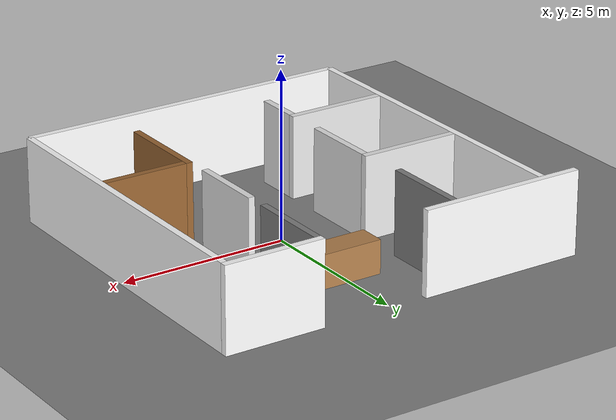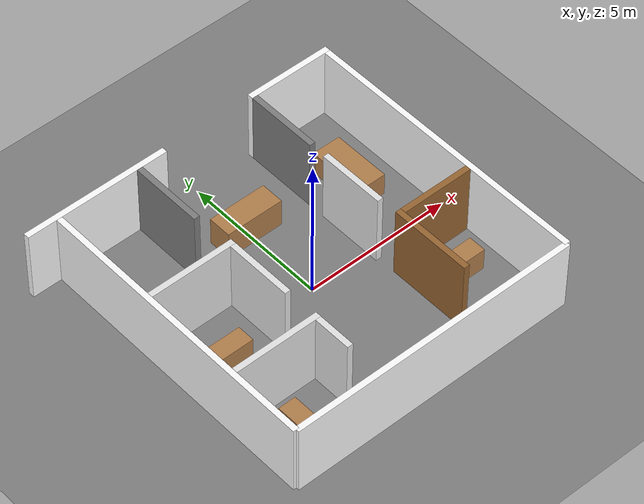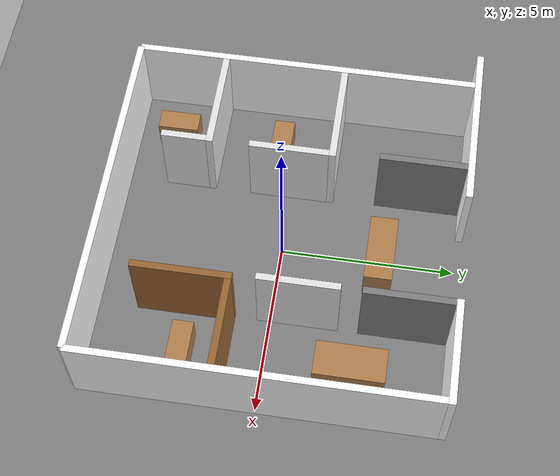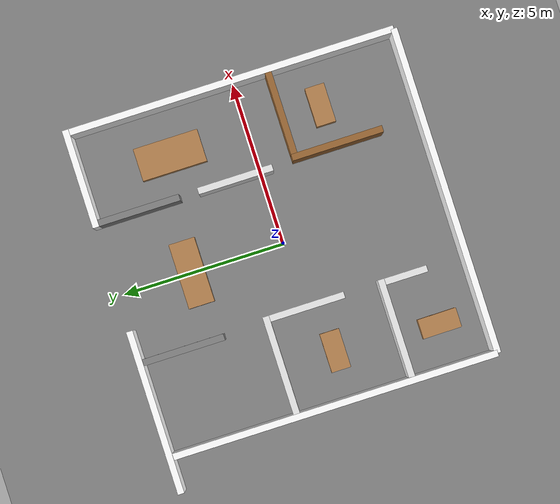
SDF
<sdf version='1.9'>
  <world name='default'>

    <!-- ==================== GZ-SIM SYSTEM PLUGINS ==================== -->
    <plugin filename="gz-sim-physics-system" name="gz::sim::systems::Physics"/>
    <plugin filename="gz-sim-scene-broadcaster-system" name="gz::sim::systems::SceneBroadcaster"/>
    <plugin filename="gz-sim-user-commands-system" name="gz::sim::systems::UserCommands"/>
    <plugin filename="gz-sim-sensors-system" name="gz::sim::systems::Sensors">
      <render_engine>ogre2</render_engine>
    </plugin>
    <plugin filename="gz-sim-contact-system" name="gz::sim::systems::Contact"/>

    <!-- ==================== PHYSICS ==================== -->
    <physics name="1ms" type="ignored">
      <max_step_size>0.001</max_step_size>
      <real_time_factor>1</real_time_factor>
    </physics>

    <!-- ==================== SCENE ==================== -->
    <scene>
      <ambient>0.4 0.4 0.4 1</ambient>
      <background>0.7 0.7 0.7 1</background>
      <shadows>true</shadows>
    </scene>

    <!-- ==================== LIGHT ==================== -->
    <light name='sun' type='directional'>
      <cast_shadows>true</cast_shadows>
      <pose>0 0 10 0 0 0</pose>
      <diffuse>0.8 0.8 0.8 1</diffuse>
      <specular>0.2 0.2 0.2 1</specular>
      <attenuation>
        <range>1000</range>
        <constant>0.9</constant>
        <linear>0.01</linear>
        <quadratic>0.001</quadratic>
      </attenuation>
      <direction>-0.5 0.1 -0.9</direction>
    </light>

    <gravity>0 0 -9.8</gravity>
    <magnetic_field>6e-06 2.3e-05 -4.2e-05</magnetic_field>
    <atmosphere type='adiabatic'/>

    <!-- ==================== GROUND PLANE ==================== -->
    <model name='ground_plane'>
      <static>true</static>
      <link name='link'>
        <collision name='collision'>
          <geometry>
            <plane>
              <normal>0 0 1</normal>
              <size>100 100</size>
            </plane>
          </geometry>
        </collision>
        <visual name='visual'>
          <cast_shadows>false</cast_shadows>
          <geometry>
            <plane>
              <normal>0 0 1</normal>
              <size>100 100</size>
            </plane>
          </geometry>
          <material>
            <ambient>0.5 0.5 0.5 1</ambient>
            <diffuse>0.5 0.5 0.5 1</diffuse>
            <specular>0.1 0.1 0.1 1</specular>
          </material>
        </visual>
      </link>
    </model>

    <!-- ==================== PAREDES EXTERIORES ==================== -->
    <model name='pared_frontal_der'>
      <pose>3.59994 5.10066 1.25 0 0 0</pose>
      <static>true</static>
      <link name='link'>
        <collision name='collision'>
          <geometry><box><size>3 0.2 2.5</size></box></geometry>
        </collision>
        <visual name='visual'>
          <geometry><box><size>3 0.2 2.5</size></box></geometry>
          <material>
            <ambient>1 1 1 1</ambient>
            <diffuse>1 1 1 1</diffuse>
            <specular>0.1 0.1 0.1 1</specular>
          </material>
        </visual>
      </link>
    </model>

    <model name='pared_frontal_izq'>
      <pose>-3.59897 5.10196 1.25 0 0 0</pose>
      <static>true</static>
      <link name='link'>
        <collision name='collision'>
          <geometry><box><size>5 0.2 2.5</size></box></geometry>
        </collision>
        <visual name='visual'>
          <geometry><box><size>5 0.2 2.5</size></box></geometry>
          <material>
            <ambient>1 1 1 1</ambient>
            <diffuse>1 1 1 1</diffuse>
            <specular>0.1 0.1 0.1 1</specular>
          </material>
        </visual>
      </link>
    </model>

    <model name='pared_trasera'>
      <pose>0 -5 1.25 0 0 0</pose>
      <static>true</static>
      <link name='link'>
        <collision name='collision'>
          <geometry><box><size>10 0.2 2.5</size></box></geometry>
        </collision>
        <visual name='visual'>
          <geometry><box><size>10 0.2 2.5</size></box></geometry>
          <material>
            <ambient>1 1 1 1</ambient>
            <diffuse>1 1 1 1</diffuse>
            <specular>0.1 0.1 0.1 1</specular>
          </material>
        </visual>
      </link>
    </model>

    <model name='pared_lateral_izq'>
      <pose>-5 0 1.25 0 0 0</pose>
      <static>true</static>
      <link name='link'>
        <collision name='collision'>
          <geometry><box><size>0.2 10 2.5</size></box></geometry>
        </collision>
        <visual name='visual'>
          <geometry><box><size>0.2 10 2.5</size></box></geometry>
          <material>
            <ambient>1 1 1 1</ambient>
            <diffuse>1 1 1 1</diffuse>
            <specular>0.1 0.1 0.1 1</specular>
          </material>
        </visual>
      </link>
    </model>

    <model name='pared_lateral_der'>
      <pose>5 0 1.25 0 0 0</pose>
      <static>true</static>
      <link name='link'>
        <collision name='collision'>
          <geometry><box><size>0.2 10 2.5</size></box></geometry>
        </collision>
        <visual name='visual'>
          <geometry><box><size>0.2 10 2.5</size></box></geometry>
          <material>
            <ambient>1 1 1 1</ambient>
            <diffuse>1 1 1 1</diffuse>
            <specular>0.1 0.1 0.1 1</specular>
          </material>
        </visual>
      </link>
    </model>

    <!-- ==================== DIVISIONES RECEPCION ==================== -->
    <model name='division_recepcion_izq'>
      <pose>-2.10023 3.74975 1.25 0 0 0</pose>
      <static>true</static>
      <link name='link'>
        <collision name='collision'>
          <geometry><box><size>0.2 2.5 2.5</size></box></geometry>
        </collision>
        <visual name='visual'>
          <geometry><box><size>0.2 2.5 2.5</size></box></geometry>
          <material>
            <ambient>0.5 0.5 0.5 1</ambient>
            <diffuse>0.5 0.5 0.5 1</diffuse>
            <specular>0.1 0.1 0.1 1</specular>
          </material>
        </visual>
      </link>
    </model>

    <model name='division_recepcion_der'>
      <pose>2.20183 3.74936 1.25 0 0 0</pose>
      <static>true</static>
      <link name='link'>
        <collision name='collision'>
          <geometry><box><size>0.2 2.5 2.5</size></box></geometry>
        </collision>
        <visual name='visual'>
          <geometry><box><size>0.2 2.5 2.5</size></box></geometry>
          <material>
            <ambient>0.5 0.5 0.5 1</ambient>
            <diffuse>0.5 0.5 0.5 1</diffuse>
            <specular>0.1 0.1 0.1 1</specular>
          </material>
        </visual>
      </link>
    </model>

    <!-- ==================== OFICINAS ==================== -->
    <model name='pared_oficina1_frente'>
      <pose>-3.40172 1.16407 1.25 0 0 0</pose>
      <static>true</static>
      <link name='link'>
        <collision name='collision'>
          <geometry><box><size>3 0.2 2.5</size></box></geometry>
        </collision>
        <visual name='visual'>
          <geometry><box><size>3 0.2 2.5</size></box></geometry>
          <material>
            <ambient>0.9 0.9 0.9 1</ambient>
            <diffuse>0.9 0.9 0.9 1</diffuse>
            <specular>0.1 0.1 0.1 1</specular>
          </material>
        </visual>
      </link>
    </model>

    <model name='pared_oficina1_lateral'>
      <pose>-1.99969 -0.086651 1.25 0 0 0</pose>
      <static>true</static>
      <link name='link'>
        <collision name='collision'>
          <geometry><box><size>0.2 2.3 2.5</size></box></geometry>
        </collision>
        <visual name='visual'>
          <geometry><box><size>0.2 2.3 2.5</size></box></geometry>
          <material>
            <ambient>0.9 0.9 0.9 1</ambient>
            <diffuse>0.9 0.9 0.9 1</diffuse>
            <specular>0.1 0.1 0.1 1</specular>
          </material>
        </visual>
      </link>
    </model>

    <model name='pared_oficina2_frente'>
      <pose>-3.39921 -2.38669 1.25 0 0 0</pose>
      <static>true</static>
      <link name='link'>
        <collision name='collision'>
          <geometry><box><size>3 0.2 2.5</size></box></geometry>
        </collision>
        <visual name='visual'>
          <geometry><box><size>3 0.2 2.5</size></box></geometry>
          <material>
            <ambient>0.9 0.9 0.9 1</ambient>
            <diffuse>0.9 0.9 0.9 1</diffuse>
            <specular>0.1 0.1 0.1 1</specular>
          </material>
        </visual>
      </link>
    </model>

    <model name='pared_oficina2_lateral'>
      <pose>-2.00148 -3.13664 1.25 0 0 0</pose>
      <static>true</static>
      <link name='link'>
        <collision name='collision'>
          <geometry><box><size>0.2 1.3 2.5</size></box></geometry>
        </collision>
        <visual name='visual'>
          <geometry><box><size>0.2 1.3 2.5</size></box></geometry>
          <material>
            <ambient>0.9 0.9 0.9 1</ambient>
            <diffuse>0.9 0.9 0.9 1</diffuse>
            <specular>0.1 0.1 0.1 1</specular>
          </material>
        </visual>
      </link>
    </model>

    <model name='pared_oficina3_lateral'>
      <pose>2.20299 0.779296 1.25 0 0 0</pose>
      <static>true</static>
      <link name='link'>
        <collision name='collision'>
          <geometry><box><size>0.2 2.3 2.5</size></box></geometry>
        </collision>
        <visual name='visual'>
          <geometry><box><size>0.2 2.3 2.5</size></box></geometry>
          <material>
            <ambient>0.9 0.9 0.9 1</ambient>
            <diffuse>0.9 0.9 0.9 1</diffuse>
            <specular>0.1 0.1 0.1 1</specular>
          </material>
        </visual>
      </link>
    </model>

    <!-- ==================== SALA DE JUNTAS ==================== -->
    <model name='pared_sala_frente'>
      <pose>3.65062 -1.09408 1.25 0 0 0</pose>
      <static>true</static>
      <link name='link'>
        <collision name='collision'>
          <geometry><box><size>2.5 0.2 2.5</size></box></geometry>
        </collision>
        <visual name='visual'>
          <geometry><box><size>2.5 0.2 2.5</size></box></geometry>
          <material>
            <ambient>0.6 0.4 0.2 1</ambient>
            <diffuse>0.6 0.4 0.2 1</diffuse>
            <specular>0.2 0.15 0.1 1</specular>
          </material>
        </visual>
      </link>
    </model>

    <model name='pared_sala_lateral'>
      <pose>2.30214 -2.39609 1.25 0 0 0</pose>
      <static>true</static>
      <link name='link'>
        <collision name='collision'>
          <geometry><box><size>0.2 2.8 2.5</size></box></geometry>
        </collision>
        <visual name='visual'>
          <geometry><box><size>0.2 2.8 2.5</size></box></geometry>
          <material>
            <ambient>0.6 0.4 0.2 1</ambient>
            <diffuse>0.6 0.4 0.2 1</diffuse>
            <specular>0.2 0.15 0.1 1</specular>
          </material>
        </visual>
      </link>
    </model>

    <!-- ==================== MUEBLES ==================== -->
    <model name='escritorio_of1'>
      <pose>-3.5 -0.5 0.4 0 0 0</pose>
      <static>true</static>
      <link name='link'>
        <collision name='collision'>
          <geometry><box><size>1.2 0.6 0.8</size></box></geometry>
        </collision>
        <visual name='visual'>
          <geometry><box><size>1.2 0.6 0.8</size></box></geometry>
          <material>
            <ambient>0.7 0.5 0.3 1</ambient>
            <diffuse>0.7 0.5 0.3 1</diffuse>
            <specular>0.2 0.15 0.1 1</specular>
          </material>
        </visual>
      </link>
    </model>

    <model name='escritorio_of2'>
      <pose>-3.673 -3.70375 0.4 0 0 1.57678</pose>
      <static>true</static>
      <link name='link'>
        <collision name='collision'>
          <geometry><box><size>1.2 0.6 0.8</size></box></geometry>
        </collision>
        <visual name='visual'>
          <geometry><box><size>1.2 0.6 0.8</size></box></geometry>
          <material>
            <ambient>0.7 0.5 0.3 1</ambient>
            <diffuse>0.7 0.5 0.3 1</diffuse>
            <specular>0.2 0.15 0.1 1</specular>
          </material>
        </visual>
      </link>
    </model>

    <model name='escritorio_of3'>
      <pose>3.60379 -2.30701 0.4 0 0 0</pose>
      <static>true</static>
      <link name='link'>
        <collision name='collision'>
          <geometry><box><size>1.2 0.6 0.8</size></box></geometry>
        </collision>
        <visual name='visual'>
          <geometry><box><size>1.2 0.6 0.8</size></box></geometry>
          <material>
            <ambient>0.7 0.5 0.3 1</ambient>
            <diffuse>0.7 0.5 0.3 1</diffuse>
            <specular>0.2 0.15 0.1 1</specular>
          </material>
        </visual>
      </link>
    </model>

    <model name='mesa_juntas'>
      <pose>3.54447 2.41303 0.4 0 0 1.57026</pose>
      <static>true</static>
      <link name='link'>
        <collision name='collision'>
          <geometry><box><size>2 1 0.8</size></box></geometry>
        </collision>
        <visual name='visual'>
          <geometry><box><size>2 1 0.8</size></box></geometry>
          <material>
            <ambient>0.7 0.5 0.3 1</ambient>
            <diffuse>0.7 0.5 0.3 1</diffuse>
            <specular>0.2 0.15 0.1 1</specular>
          </material>
        </visual>
      </link>
    </model>

    <model name='mostrador_recepcion'>
      <pose>0 2.86892 0.5 0 0 0</pose>
      <static>true</static>
      <link name='link'>
        <collision name='collision'>
          <geometry><box><size>2 0.8 1</size></box></geometry>
        </collision>
        <visual name='visual'>
          <geometry><box><size>2 0.8 1</size></box></geometry>
          <material>
            <ambient>0.7 0.5 0.3 1</ambient>
            <diffuse>0.7 0.5 0.3 1</diffuse>
            <specular>0.2 0.15 0.1 1</specular>
          </material>
        </visual>
      </link>
    </model>

  </world>
</sdf>
